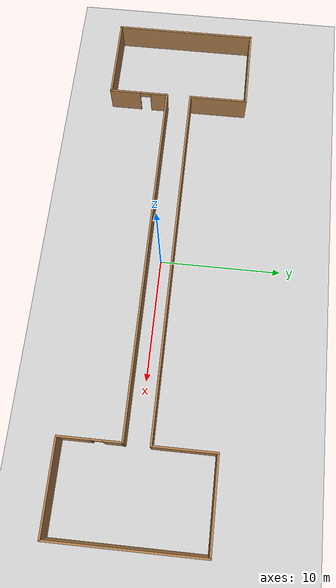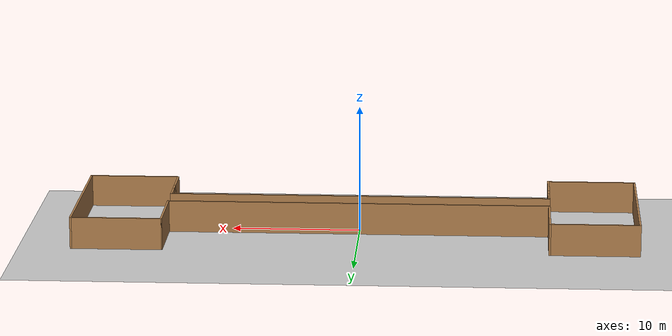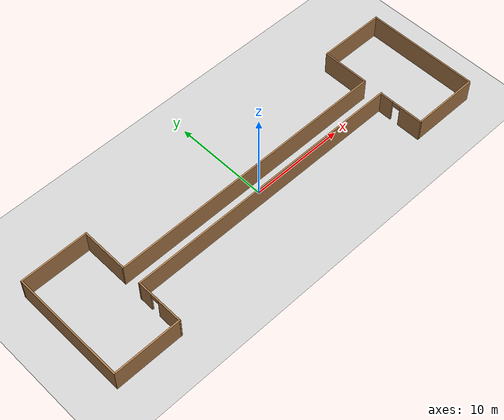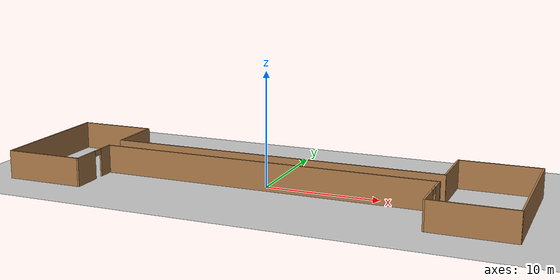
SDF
<sdf version="1.7">
 <world name="default">
  <light name="sun" type="directional">
   <pose>0 0 10 0 -0 0</pose>
   <diffuse>0.8 0.8 0.8 1</diffuse>
   <specular>0.2 0.2 0.2 1</specular>
   <attenuation>
    <range>1000</range>
    <constant>0.9</constant>
    <linear>0.01</linear>
    <quadratic>0.001</quadratic>
   </attenuation>
   <direction>-0.5 0.1 -0.9</direction>
   <spot><inner_angle>0</inner_angle><outer_angle>0</outer_angle><falloff>0</falloff></spot>
  </light>
  <model name="ground_plane">
   <static>1</static>
   <link name="link">
    <collision name="collision">
     <geometry><plane><normal>0 0 1</normal><size>100 100</size></plane></geometry>
     <surface>
      <contact><collide_bitmask>65535</collide_bitmask></contact>
      <friction><ode><mu>100</mu><mu2>50</mu2></ode></friction>
     </surface>
    </collision>
    <visual name="visual">
     <cast_shadows>0</cast_shadows>
     <geometry><plane><normal>0 0 1</normal><size>100 100</size></plane></geometry>
     <material>
      <script><uri>file://media/materials/scripts/gazebo.material</uri><name>Gazebo/Grey</name></script>
     </material>
    </visual>
   </link>
  </model>
  <gravity>0 0 -9.8</gravity>
  <magnetic_field>6e-06 2.3e-05 -4.2e-05</magnetic_field>
  <atmosphere type="adiabatic"/>
  <physics type="ode">
   <max_step_size>0.001</max_step_size>
   <real_time_factor>1</real_time_factor>
   <real_time_update_rate>1000</real_time_update_rate>
  </physics>
  <scene><ambient>0.4 0.4 0.4 1</ambient><background>0.7 0.7 0.7 1</background><shadows>1</shadows></scene>
  <spherical_coordinates>
   <surface_model>EARTH_WGS84</surface_model>
   <latitude_deg>0</latitude_deg>
   <longitude_deg>0</longitude_deg>
   <elevation>0</elevation>
   <heading_deg>0</heading_deg>
  </spherical_coordinates>
  <model name="pasillo">
   <pose>0.1568 -0.01521 0 0 -0 0</pose>
   <link name="Wall_10">
    <pose>14.837 -3.47359 0 0 -0 -1.5708</pose>
    <visual name="Wall_10_Visual_0">
     <pose>-1.72883 0 1.25 0 -0 0</pose>
     <geometry><box><size>1.54233 0.15 2.5</size></box></geometry>
     <material>
      <script><uri>file://media/materials/scripts/gazebo.material</uri><name>Gazebo/Wood</name></script>
      <ambient>1 1 1 1</ambient>
     </material>
     <meta><layer>0</layer></meta>
    </visual>
    <collision name="Wall_10_Collision_0">
     <geometry><box><size>1.54233 0.15 2.5</size></box></geometry>
     <pose>-1.72883 0 1.25 0 -0 0</pose>
    </collision>
    <visual name="Wall_10_Visual_1">
     <pose>1.22117 0 1.25 0 -0 0</pose>
     <geometry><box><size>2.55767 0.15 2.5</size></box></geometry>
     <material>
      <script><uri>file://media/materials/scripts/gazebo.material</uri><name>Gazebo/Wood</name></script>
      <ambient>1 1 1 1</ambient>
     </material>
     <meta><layer>0</layer></meta>
    </visual>
    <collision name="Wall_10_Collision_1">
     <geometry><box><size>2.55767 0.15 2.5</size></box></geometry>
     <pose>1.22117 0 1.25 0 -0 0</pose>
    </collision>
    <visual name="Wall_10_Visual_2">
     <pose>-0.507666 0 2.25 0 -0 0</pose>
     <geometry><box><size>0.9 0.15 0.5</size></box></geometry>
     <material>
      <script><uri>file://media/materials/scripts/gazebo.material</uri><name>Gazebo/Wood</name></script>
      <ambient>1 1 1 1</ambient>
     </material>
     <meta><layer>0</layer></meta>
    </visual>
    <collision name="Wall_10_Collision_2">
     <geometry><box><size>0.9 0.15 0.5</size></box></geometry>
     <pose>-0.507666 0 2.25 0 -0 0</pose>
    </collision>
   </link>
   <link name="Wall_12">
    <collision name="Wall_12_Collision">
     <geometry><box><size>5 0.15 2.5</size></box></geometry>
     <pose>0 0 1.25 0 -0 0</pose>
    </collision>
    <visual name="Wall_12_Visual">
     <pose>0 0 1.25 0 -0 0</pose>
     <geometry><box><size>5 0.15 2.5</size></box></geometry>
     <material>
      <script><uri>file://media/materials/scripts/gazebo.material</uri><name>Gazebo/Wood</name></script>
      <ambient>1 1 1 1</ambient>
     </material>
     <meta><layer>0</layer></meta>
    </visual>
    <pose>14.866 3.5384 0 0 -0 -1.5708</pose>
   </link>
   <link name="Wall_14">
    <collision name="Wall_14_Collision">
     <geometry><box><size>7 0.15 2.5</size></box></geometry>
     <pose>0 0 1.25 0 -0 0</pose>
    </collision>
    <visual name="Wall_14_Visual">
     <pose>0 0 1.25 0 -0 0</pose>
     <geometry><box><size>7 0.15 2.5</size></box></geometry>
     <material>
      <script><uri>file://media/materials/scripts/gazebo.material</uri><name>Gazebo/Wood</name></script>
      <ambient>1 1 1 1</ambient>
     </material>
     <meta><layer>0</layer></meta>
    </visual>
    <pose>-18.45 5.96554 0 0 -0 0</pose>
   </link>
   <link name="Wall_16">
    <collision name="Wall_16_Collision">
     <geometry><box><size>7 0.15 2.5</size></box></geometry>
     <pose>0 0 1.25 0 -0 0</pose>
    </collision>
    <visual name="Wall_16_Visual">
     <pose>0 0 1.25 0 -0 0</pose>
     <geometry><box><size>7 0.15 2.5</size></box></geometry>
     <material>
      <script><uri>file://media/materials/scripts/gazebo.material</uri><name>Gazebo/Wood</name></script>
      <ambient>1 1 1 1</ambient>
     </material>
     <meta><layer>0</layer></meta>
    </visual>
    <pose>-18.439 -5.9689 0 0 -0 0</pose>
   </link>
   <link name="Wall_2">
    <collision name="Wall_2_Collision">
     <geometry><box><size>30 0.15 2.5</size></box></geometry>
     <pose>0 0 1.25 0 -0 0</pose>
    </collision>
    <visual name="Wall_2_Visual">
     <pose>0 0 1.25 0 -0 0</pose>
     <geometry><box><size>30 0.15 2.5</size></box></geometry>
     <material>
      <script><uri>file://media/materials/scripts/gazebo.material</uri><name>Gazebo/Wood</name></script>
      <ambient>1 1 1 1</ambient>
     </material>
     <meta><layer>0</layer></meta>
    </visual>
    <pose>-0.070853 1.06509 0 0 -0 0</pose>
   </link>
   <link name="Wall_20">
    <collision name="Wall_20_Collision">
     <geometry><box><size>12 0.15 2.5</size></box></geometry>
     <pose>0 0 1.25 0 -0 0</pose>
    </collision>
    <visual name="Wall_20_Visual">
     <pose>0 0 1.25 0 -0 0</pose>
     <geometry><box><size>12 0.15 2.5</size></box></geometry>
     <material>
      <script><uri>file://media/materials/scripts/gazebo.material</uri><name>Gazebo/Wood</name></script>
      <ambient>1 1 1 1</ambient>
     </material>
     <meta><layer>0</layer></meta>
    </visual>
    <pose>-21.8711 -0.012114 0 0 -0 -1.5708</pose>
   </link>
   <link name="Wall_22">
    <collision name="Wall_22_Collision">
     <geometry><box><size>7 0.15 2.5</size></box></geometry>
     <pose>0 0 1.25 0 -0 0</pose>
    </collision>
    <visual name="Wall_22_Visual">
     <pose>0 0 1.25 0 -0 0</pose>
     <geometry><box><size>7 0.15 2.5</size></box></geometry>
     <material>
      <script><uri>file://media/materials/scripts/gazebo.material</uri><name>Gazebo/Wood</name></script>
      <ambient>1 1 1 1</ambient>
     </material>
     <meta><layer>0</layer></meta>
    </visual>
    <pose>18.4045 -5.91823 0 0 -0 0</pose>
   </link>
   <link name="Wall_24">
    <collision name="Wall_24_Collision">
     <geometry><box><size>7 0.15 2.5</size></box></geometry>
     <pose>0 0 1.25 0 -0 0</pose>
    </collision>
    <visual name="Wall_24_Visual">
     <pose>0 0 1.25 0 -0 0</pose>
     <geometry><box><size>7 0.15 2.5</size></box></geometry>
     <material>
      <script><uri>file://media/materials/scripts/gazebo.material</uri><name>Gazebo/Wood</name></script>
      <ambient>1 1 1 1</ambient>
     </material>
     <meta><layer>0</layer></meta>
    </visual>
    <pose>18.3617 5.986 0 0 -0 0</pose>
   </link>
   <link name="Wall_27">
    <collision name="Wall_27_Collision">
     <geometry><box><size>12 0.15 2.5</size></box></geometry>
     <pose>0 0 1.25 0 -0 0</pose>
    </collision>
    <visual name="Wall_27_Visual">
     <pose>0 0 1.25 0 -0 0</pose>
     <geometry><box><size>12 0.15 2.5</size></box></geometry>
     <material>
      <script><uri>file://media/materials/scripts/gazebo.material</uri><name>Gazebo/Wood</name></script>
      <ambient>1 1 1 1</ambient>
     </material>
     <meta><layer>0</layer></meta>
    </visual>
    <pose>21.875 0.061889 0 0 -0 -1.5708</pose>
   </link>
   <link name="Wall_4">
    <collision name="Wall_4_Collision">
     <geometry><box><size>30 0.15 2.5</size></box></geometry>
     <pose>0 0 1.25 0 -0 0</pose>
    </collision>
    <visual name="Wall_4_Visual">
     <pose>0 0 1.25 0 -0 0</pose>
     <geometry><box><size>30 0.15 2.5</size></box></geometry>
     <material>
      <script><uri>file://media/materials/scripts/gazebo.material</uri><name>Gazebo/Wood</name></script>
      <ambient>1 1 1 1</ambient>
     </material>
     <meta><layer>0</layer></meta>
    </visual>
    <pose>-0.068829 -1.01579 0 0 -0 0</pose>
   </link>
   <link name="Wall_6">
    <pose>-14.9862 -3.56189 0 0 -0 -1.5708</pose>
    <visual name="Wall_6_Visual_0">
     <pose>-1.7881 0 1.25 0 -0 0</pose>
     <geometry><box><size>1.42379 0.15 2.5</size></box></geometry>
     <material>
      <script><uri>file://media/materials/scripts/gazebo.material</uri><name>Gazebo/Wood</name></script>
      <ambient>1 1 1 1</ambient>
     </material>
     <meta><layer>0</layer></meta>
    </visual>
    <collision name="Wall_6_Collision_0">
     <geometry><box><size>1.42379 0.15 2.5</size></box></geometry>
     <pose>-1.7881 0 1.25 0 -0 0</pose>
    </collision>
    <visual name="Wall_6_Visual_1">
     <pose>1.1619 0 1.25 0 -0 0</pose>
     <geometry><box><size>2.67621 0.15 2.5</size></box></geometry>
     <material>
      <script><uri>file://media/materials/scripts/gazebo.material</uri><name>Gazebo/Wood</name></script>
      <ambient>1 1 1 1</ambient>
     </material>
     <meta><layer>0</layer></meta>
    </visual>
    <collision name="Wall_6_Collision_1">
     <geometry><box><size>2.67621 0.15 2.5</size></box></geometry>
     <pose>1.1619 0 1.25 0 -0 0</pose>
    </collision>
    <visual name="Wall_6_Visual_2">
     <pose>-0.626208 0 2.25 0 -0 0</pose>
     <geometry><box><size>0.9 0.15 0.5</size></box></geometry>
     <material>
      <script><uri>file://media/materials/scripts/gazebo.material</uri><name>Gazebo/Wood</name></script>
      <ambient>1 1 1 1</ambient>
     </material>
     <meta><layer>0</layer></meta>
    </visual>
    <collision name="Wall_6_Collision_2">
     <geometry><box><size>0.9 0.15 0.5</size></box></geometry>
     <pose>-0.626208 0 2.25 0 -0 0</pose>
    </collision>
   </link>
   <link name="Wall_8">
    <collision name="Wall_8_Collision">
     <geometry><box><size>5 0.15 2.5</size></box></geometry>
     <pose>0 0 1.25 0 -0 0</pose>
    </collision>
    <visual name="Wall_8_Visual">
     <pose>0 0 1.25 0 -0 0</pose>
     <geometry><box><size>5 0.15 2.5</size></box></geometry>
     <material>
      <script><uri>file://media/materials/scripts/gazebo.material</uri><name>Gazebo/Wood</name></script>
      <ambient>1 1 1 1</ambient>
     </material>
     <meta><layer>0</layer></meta>
    </visual>
    <pose>-14.994 3.54141 0 0 -0 -1.5708</pose>
   </link>
   <static>1</static>
  </model>
 </world>
</sdf>
